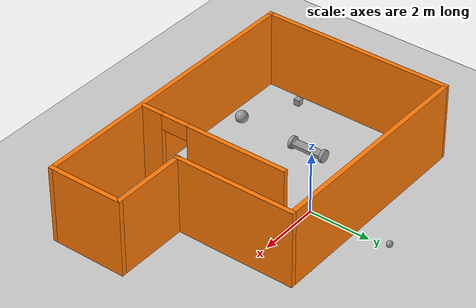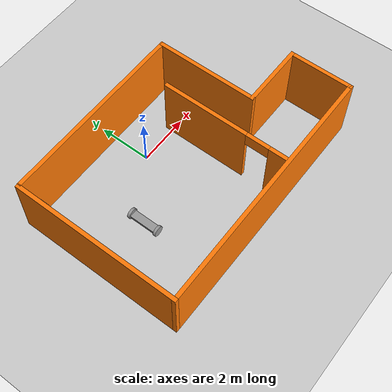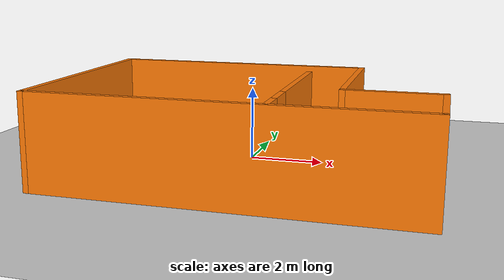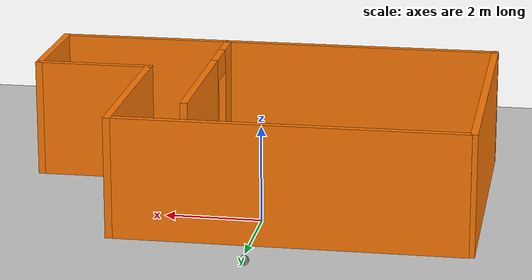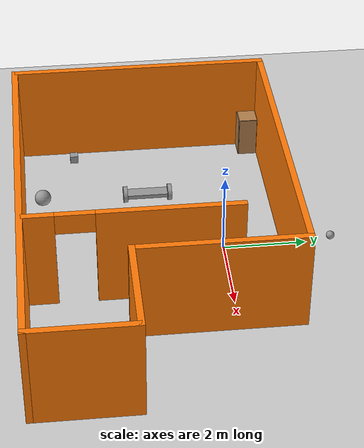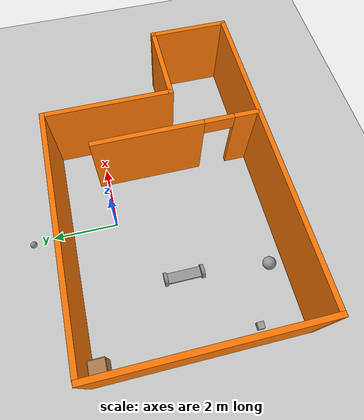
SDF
<sdf version="1.6">
 <world name="default">
  <plugin name="hello" filename="libhello.so"/>
  <light name="sun" type="directional">
   <pose>0 0 10 0 -0 0</pose>
   <diffuse>0.8 0.8 0.8 1</diffuse>
   <specular>0.2 0.2 0.2 1</specular>
   <attenuation>
    <range>1000</range>
    <constant>0.9</constant>
    <linear>0.01</linear>
    <quadratic>0.001</quadratic>
   </attenuation>
   <direction>-0.5 0.1 -0.9</direction>
  </light>
  <model name="ground_plane">
   <static>1</static>
   <link name="link">
    <collision name="collision">
     <geometry><plane><normal>0 0 1</normal><size>100 100</size></plane></geometry>
     <surface>
      <contact><collide_bitmask>65535</collide_bitmask></contact>
      <friction><ode><mu>100</mu><mu2>50</mu2></ode></friction>
     </surface>
    </collision>
    <visual name="visual">
     <cast_shadows>0</cast_shadows>
     <geometry><plane><normal>0 0 1</normal><size>100 100</size></plane></geometry>
     <material>
      <script><uri>file://media/materials/scripts/gazebo.material</uri><name>Gazebo/Grey</name></script>
     </material>
    </visual>
   </link>
  </model>
  <gravity>0 0 -9.8</gravity>
  <magnetic_field>6e-06 2.3e-05 -4.2e-05</magnetic_field>
  <atmosphere type="adiabatic"/>
  <physics name="default_physics" default="0" type="ode">
   <max_step_size>0.001</max_step_size>
   <real_time_factor>1</real_time_factor>
   <real_time_update_rate>1000</real_time_update_rate>
  </physics>
  <scene><ambient>0.4 0.4 0.4 1</ambient><background>0.7 0.7 0.7 1</background><shadows>1</shadows></scene>
  <spherical_coordinates>
   <surface_model>EARTH_WGS84</surface_model>
   <latitude_deg>0</latitude_deg>
   <longitude_deg>0</longitude_deg>
   <elevation>0</elevation>
   <heading_deg>0</heading_deg>
  </spherical_coordinates>
  <model name="P_World">
   <pose>0.43148 -1.64418 0 0 -0 0</pose>
   <link name="Wall_0">
    <collision name="Wall_0_Collision">
     <geometry><box><size>7.25 0.15 2.5</size></box></geometry>
     <pose>0 0 1.25 0 -0 0</pose>
    </collision>
    <visual name="Wall_0_Visual">
     <pose>0 0 1.25 0 -0 0</pose>
     <geometry><box><size>7.25 0.15 2.5</size></box></geometry>
     <material>
      <script><uri>file://media/materials/scripts/gazebo.material</uri><name>Gazebo/Grey</name></script>
      <ambient>0.996078 0.47451 0.0196078 1</ambient>
     </material>
     <meta><layer>0</layer></meta>
    </visual>
    <pose>-1.141 3.10045 0 0 -0 0</pose>
   </link>
   <link name="Wall_12">
    <pose>1.11372 -0.584713 0 0 0 -1.5708</pose>
    <visual name="Wall_12_Visual_0">
     <pose>-0.823007 0 1.25 0 -0 0</pose>
     <geometry><box><size>3.35399 0.15 2.5</size></box></geometry>
     <material>
      <script><uri>file://media/materials/scripts/gazebo.material</uri><name>Gazebo/Grey</name></script>
      <ambient>0.996078 0.47451 0.0196078 1</ambient>
     </material>
     <meta><layer>0</layer></meta>
    </visual>
    <collision name="Wall_12_Collision_0">
     <geometry><box><size>3.35399 0.15 2.5</size></box></geometry>
     <pose>-0.823007 0 1.25 0 -0 0</pose>
    </collision>
    <visual name="Wall_12_Visual_1">
     <pose>2.12699 0 1.25 0 -0 0</pose>
     <geometry><box><size>0.746013 0.15 2.5</size></box></geometry>
     <material>
      <script><uri>file://media/materials/scripts/gazebo.material</uri><name>Gazebo/Grey</name></script>
      <ambient>0.996078 0.47451 0.0196078 1</ambient>
     </material>
     <meta><layer>0</layer></meta>
    </visual>
    <collision name="Wall_12_Collision_1">
     <geometry><box><size>0.746013 0.15 2.5</size></box></geometry>
     <pose>2.12699 0 1.25 0 -0 0</pose>
    </collision>
    <visual name="Wall_12_Visual_2">
     <pose>1.30399 0 2.25 0 -0 0</pose>
     <geometry><box><size>0.9 0.15 0.5</size></box></geometry>
     <material>
      <script><uri>file://media/materials/scripts/gazebo.material</uri><name>Gazebo/Grey</name></script>
      <ambient>0.996078 0.47451 0.0196078 1</ambient>
     </material>
     <meta><layer>0</layer></meta>
    </visual>
    <collision name="Wall_12_Collision_2">
     <geometry><box><size>0.9 0.15 0.5</size></box></geometry>
     <pose>1.30399 0 2.25 0 -0 0</pose>
    </collision>
   </link>
   <link name="Wall_14">
    <collision name="Wall_14_Collision">
     <geometry><box><size>6.34 0.15 2.5</size></box></geometry>
     <pose>0 0 1.25 0 -0 0</pose>
    </collision>
    <visual name="Wall_14_Visual">
     <pose>0 0 1.25 0 -0 0</pose>
     <geometry><box><size>6.34 0.15 2.5</size></box></geometry>
     <material>
      <script><uri>file://media/materials/scripts/gazebo.material</uri><name>Gazebo/Grey</name></script>
      <ambient>0.996078 0.47451 0.0196078 1</ambient>
     </material>
     <meta><layer>0</layer></meta>
    </visual>
    <pose>-4.8 -0.005555 0 0 -0 1.5708</pose>
   </link>
   <link name="Wall_4">
    <collision name="Wall_4_Collision">
     <geometry><box><size>4.00122 0.15 2.5</size></box></geometry>
     <pose>0 0 1.25 0 -0 0</pose>
    </collision>
    <visual name="Wall_4_Visual">
     <pose>0 0 1.25 0 -0 0</pose>
     <geometry><box><size>4.00122 0.15 2.5</size></box></geometry>
     <material>
      <script><uri>file://media/materials/scripts/gazebo.material</uri><name>Gazebo/Grey</name></script>
      <ambient>0.996078 0.47451 0.0196078 1</ambient>
     </material>
     <meta><layer>0</layer></meta>
    </visual>
    <pose>2.409 1.17494 0 0 0 -1.5708</pose>
   </link>
   <link name="Wall_6">
    <collision name="Wall_6_Collision">
     <geometry><box><size>2.541 0.15 2.5</size></box></geometry>
     <pose>0 0 1.25 0 -0 0</pose>
    </collision>
    <visual name="Wall_6_Visual">
     <pose>0 0 1.25 0 -0 0</pose>
     <geometry><box><size>2.541 0.15 2.5</size></box></geometry>
     <material>
      <script><uri>file://media/materials/scripts/gazebo.material</uri><name>Gazebo/Grey</name></script>
      <ambient>0.996078 0.47451 0.0196078 1</ambient>
     </material>
     <meta><layer>0</layer></meta>
    </visual>
    <pose>3.6045 -0.750555 0 0 -0 0</pose>
   </link>
   <link name="Wall_7">
    <collision name="Wall_7_Collision">
     <geometry><box><size>2.5 0.15 2.5</size></box></geometry>
     <pose>0 0 1.25 0 -0 0</pose>
    </collision>
    <visual name="Wall_7_Visual">
     <pose>0 0 1.25 0 -0 0</pose>
     <geometry><box><size>2.5 0.15 2.5</size></box></geometry>
     <material>
      <script><uri>file://media/materials/scripts/gazebo.material</uri><name>Gazebo/Grey</name></script>
      <ambient>0.996078 0.47451 0.0196078 1</ambient>
     </material>
     <meta><layer>0</layer></meta>
    </visual>
    <pose>4.8 -1.92555 0 0 0 -1.5708</pose>
   </link>
   <link name="Wall_8">
    <collision name="Wall_8_Collision">
     <geometry><box><size>9.75 0.15 2.5</size></box></geometry>
     <pose>0 0 1.25 0 -0 0</pose>
    </collision>
    <visual name="Wall_8_Visual">
     <pose>0 0 1.25 0 -0 0</pose>
     <geometry><box><size>9.75 0.15 2.5</size></box></geometry>
     <material>
      <script><uri>file://media/materials/scripts/gazebo.material</uri><name>Gazebo/Grey</name></script>
      <ambient>0.996078 0.47451 0.0196078 1</ambient>
     </material>
     <meta><layer>0</layer></meta>
    </visual>
    <pose>0 -3.10055 0 0 -0 3.14159</pose>
   </link>
   <static>1</static>
  </model>
  <model name="robot_2">
   <link name="link_0">
    <inertial>
     <mass>1</mass>
     <inertia>
      <ixx>0.166667</ixx>
      <ixy>0</ixy>
      <ixz>0</ixz>
      <iyy>0.166667</iyy>
      <iyz>0</iyz>
      <izz>0.166667</izz>
     </inertia>
    </inertial>
    <visual name="visual">
     <geometry><box><size>0.3 1 0.1</size></box></geometry>
     <material>
      <lighting>1</lighting>
      <script><uri>file://media/materials/scripts/gazebo.material</uri><name>Gazebo/Grey</name></script>
      <shader type="pixel"><normal_map>__default__</normal_map></shader>
      <ambient>0.3 0.3 0.3 1</ambient>
      <diffuse>0.7 0.7 0.7 1</diffuse>
      <specular>0.01 0.01 0.01 1</specular>
      <emissive>0 0 0 1</emissive>
     </material>
    </visual>
    <collision name="collision">
     <geometry><box><size>0.3 1 0.1</size></box></geometry>
     <surface>
      <friction>
       <ode><mu>1</mu><mu2>1</mu2><fdir1>0 0 0</fdir1><slip1>0</slip1><slip2>0</slip2></ode>
       <torsional>
        <coefficient>1</coefficient>
        <patch_radius>0</patch_radius>
        <surface_radius>0</surface_radius>
        <use_patch_radius>1</use_patch_radius>
        <ode><slip>0</slip></ode>
       </torsional>
      </friction>
      <bounce><restitution_coefficient>0</restitution_coefficient><threshold>1e+06</threshold></bounce>
      <contact>
       <collide_without_contact>0</collide_without_contact>
       <collide_without_contact_bitmask>1</collide_without_contact_bitmask>
       <collide_bitmask>1</collide_bitmask>
       <ode>
        <soft_cfm>0</soft_cfm>
        <soft_erp>0.2</soft_erp>
        <kp>1e+13</kp>
        <kd>1</kd>
        <max_vel>0.01</max_vel>
        <min_depth>0</min_depth>
       </ode>
       <bullet>
        <split_impulse>1</split_impulse>
        <split_impulse_penetration_threshold>-0.01</split_impulse_penetration_threshold>
        <soft_cfm>0</soft_cfm>
        <soft_erp>0.2</soft_erp>
        <kp>1e+13</kp>
        <kd>1</kd>
       </bullet>
      </contact>
     </surface>
    </collision>
   </link>
   <link name="link_1_clone">
    <pose>0 0.550159 0 1.57 -0 0</pose>
    <inertial>
     <mass>1</mass>
     <inertia><ixx>0.145833</ixx><ixy>0</ixy><ixz>0</ixz><iyy>0.145833</iyy><iyz>0</iyz><izz>0.125</izz></inertia>
    </inertial>
    <visual name="visual">
     <geometry><cylinder><radius>0.2</radius><length>0.1</length></cylinder></geometry>
     <material>
      <lighting>1</lighting>
      <script><uri>file://media/materials/scripts/gazebo.material</uri><name>Gazebo/Grey</name></script>
      <shader type="pixel"><normal_map>__default__</normal_map></shader>
      <ambient>0.3 0.3 0.3 1</ambient>
      <diffuse>0.7 0.7 0.7 1</diffuse>
      <specular>0.01 0.01 0.01 1</specular>
      <emissive>0 0 0 1</emissive>
     </material>
    </visual>
    <collision name="collision">
     <geometry><cylinder><radius>0.2</radius><length>0.1</length></cylinder></geometry>
     <surface>
      <friction>
       <ode><mu>1</mu><mu2>1</mu2><fdir1>0 0 0</fdir1><slip1>0</slip1><slip2>0</slip2></ode>
       <torsional>
        <coefficient>1</coefficient>
        <patch_radius>0</patch_radius>
        <surface_radius>0</surface_radius>
        <use_patch_radius>1</use_patch_radius>
        <ode><slip>0</slip></ode>
       </torsional>
      </friction>
      <bounce><restitution_coefficient>0</restitution_coefficient><threshold>1e+06</threshold></bounce>
      <contact>
       <collide_without_contact>0</collide_without_contact>
       <collide_without_contact_bitmask>1</collide_without_contact_bitmask>
       <collide_bitmask>1</collide_bitmask>
       <ode>
        <soft_cfm>0</soft_cfm>
        <soft_erp>0.2</soft_erp>
        <kp>1e+13</kp>
        <kd>1</kd>
        <max_vel>0.01</max_vel>
        <min_depth>0</min_depth>
       </ode>
       <bullet>
        <split_impulse>1</split_impulse>
        <split_impulse_penetration_threshold>-0.01</split_impulse_penetration_threshold>
        <soft_cfm>0</soft_cfm>
        <soft_erp>0.2</soft_erp>
        <kp>1e+13</kp>
        <kd>1</kd>
       </bullet>
      </contact>
     </surface>
    </collision>
   </link>
   <link name="link_1_clone_clone">
    <pose>0 -0.550159 0 1.57 -0 0</pose>
    <inertial>
     <mass>1</mass>
     <inertia><ixx>0.145833</ixx><ixy>0</ixy><ixz>0</ixz><iyy>0.145833</iyy><iyz>0</iyz><izz>0.125</izz></inertia>
    </inertial>
    <visual name="visual">
     <geometry><cylinder><radius>0.2</radius><length>0.1</length></cylinder></geometry>
     <material>
      <lighting>1</lighting>
      <script><uri>file://media/materials/scripts/gazebo.material</uri><name>Gazebo/Grey</name></script>
      <shader type="pixel"><normal_map>__default__</normal_map></shader>
      <ambient>0.3 0.3 0.3 1</ambient>
      <diffuse>0.7 0.7 0.7 1</diffuse>
      <specular>0.01 0.01 0.01 1</specular>
      <emissive>0 0 0 1</emissive>
     </material>
    </visual>
    <collision name="collision">
     <geometry><cylinder><radius>0.2</radius><length>0.1</length></cylinder></geometry>
     <surface>
      <friction>
       <ode><mu>1</mu><mu2>1</mu2><fdir1>0 0 0</fdir1><slip1>0</slip1><slip2>0</slip2></ode>
       <torsional>
        <coefficient>1</coefficient>
        <patch_radius>0</patch_radius>
        <surface_radius>0</surface_radius>
        <use_patch_radius>1</use_patch_radius>
        <ode><slip>0</slip></ode>
       </torsional>
      </friction>
      <bounce><restitution_coefficient>0</restitution_coefficient><threshold>1e+06</threshold></bounce>
      <contact>
       <collide_without_contact>0</collide_without_contact>
       <collide_without_contact_bitmask>1</collide_without_contact_bitmask>
       <collide_bitmask>1</collide_bitmask>
       <ode>
        <soft_cfm>0</soft_cfm>
        <soft_erp>0.2</soft_erp>
        <kp>1e+13</kp>
        <kd>1</kd>
        <max_vel>0.01</max_vel>
        <min_depth>0</min_depth>
       </ode>
       <bullet>
        <split_impulse>1</split_impulse>
        <split_impulse_penetration_threshold>-0.01</split_impulse_penetration_threshold>
        <soft_cfm>0</soft_cfm>
        <soft_erp>0.2</soft_erp>
        <kp>1e+13</kp>
        <kd>1</kd>
       </bullet>
      </contact>
     </surface>
    </collision>
   </link>
   <joint name="link_0_JOINT_2" type="revolute">
    <parent>link_0</parent>
    <child>link_1_clone</child>
    <axis>
     <xyz>1 0 0</xyz>
     <use_parent_model_frame>0</use_parent_model_frame>
     <limit>
      <lower>-1.79769e+308</lower>
      <upper>1.79769e+308</upper>
      <effort>-1</effort>
      <velocity>-1</velocity>
     </limit>
     <dynamics>
      <spring_reference>0</spring_reference>
      <spring_stiffness>0</spring_stiffness>
      <damping>0</damping>
     </dynamics>
    </axis>
    <physics>
     <ode><limit><cfm>0</cfm><erp>0.2</erp></limit><suspension><cfm>0</cfm><erp>0.2</erp></suspension></ode>
    </physics>
   </joint>
   <joint name="link_0_JOINT_3" type="revolute">
    <parent>link_0</parent>
    <child>link_1_clone_clone</child>
    <axis>
     <xyz>1 0 0</xyz>
     <use_parent_model_frame>0</use_parent_model_frame>
     <limit>
      <lower>-1.79769e+308</lower>
      <upper>1.79769e+308</upper>
      <effort>-1</effort>
      <velocity>-1</velocity>
     </limit>
     <dynamics>
      <spring_reference>0</spring_reference>
      <spring_stiffness>0</spring_stiffness>
      <damping>0</damping>
     </dynamics>
    </axis>
    <physics>
     <ode><limit><cfm>0</cfm><erp>0.2</erp></limit><suspension><cfm>0</cfm><erp>0.2</erp></suspension></ode>
    </physics>
   </joint>
   <static>0</static>
   <pose>-2.09246 -1.63443 0.199996 8e-06 0.000721 -1.3e-05</pose>
  </model>
  <model name="a">
   <link name="link_0">
    <pose>-0.51151 -1.22262 0.033333 0 -0 0</pose>
    <inertial>
     <mass>1</mass>
     <inertia>
      <ixx>0.166667</ixx>
      <ixy>0</ixy>
      <ixz>0</ixz>
      <iyy>0.166667</iyy>
      <iyz>0</iyz>
      <izz>0.166667</izz>
     </inertia>
    </inertial>
    <visual name="visual">
     <geometry><box><size>0.2 0.2 0.2</size></box></geometry>
     <material>
      <lighting>1</lighting>
      <script><uri>file://media/materials/scripts/gazebo.material</uri><name>Gazebo/Grey</name></script>
      <shader type="pixel"><normal_map>__default__</normal_map></shader>
      <ambient>0.3 0.3 0.3 1</ambient>
      <diffuse>0.7 0.7 0.7 1</diffuse>
      <specular>0.01 0.01 0.01 1</specular>
      <emissive>0 0 0 1</emissive>
     </material>
    </visual>
    <collision name="collision">
     <geometry><box><size>0.2 0.2 0.2</size></box></geometry>
     <surface>
      <friction>
       <ode><mu>1</mu><mu2>1</mu2><fdir1>0 0 0</fdir1><slip1>0</slip1><slip2>0</slip2></ode>
       <torsional>
        <coefficient>1</coefficient>
        <patch_radius>0</patch_radius>
        <surface_radius>0</surface_radius>
        <use_patch_radius>1</use_patch_radius>
        <ode><slip>0</slip></ode>
       </torsional>
      </friction>
      <bounce><restitution_coefficient>0</restitution_coefficient><threshold>1e+06</threshold></bounce>
      <contact>
       <collide_without_contact>0</collide_without_contact>
       <collide_without_contact_bitmask>1</collide_without_contact_bitmask>
       <collide_bitmask>1</collide_bitmask>
       <ode>
        <soft_cfm>0</soft_cfm>
        <soft_erp>0.2</soft_erp>
        <kp>1e+13</kp>
        <kd>1</kd>
        <max_vel>0.01</max_vel>
        <min_depth>0</min_depth>
       </ode>
       <bullet>
        <split_impulse>1</split_impulse>
        <split_impulse_penetration_threshold>-0.01</split_impulse_penetration_threshold>
        <soft_cfm>0</soft_cfm>
        <soft_erp>0.2</soft_erp>
        <kp>1e+13</kp>
        <kd>1</kd>
       </bullet>
      </contact>
     </surface>
    </collision>
   </link>
   <link name="link_1">
    <pose>1.14511 -2.08059 0.033333 0 -0 0</pose>
    <inertial>
     <mass>1</mass>
     <inertia><ixx>0.1</ixx><ixy>0</ixy><ixz>0</ixz><iyy>0.1</iyy><iyz>0</iyz><izz>0.1</izz></inertia>
    </inertial>
    <visual name="visual">
     <geometry><sphere><radius>0.2</radius></sphere></geometry>
     <material>
      <lighting>1</lighting>
      <script><uri>file://media/materials/scripts/gazebo.material</uri><name>Gazebo/Grey</name></script>
      <shader type="pixel"><normal_map>__default__</normal_map></shader>
      <ambient>0.3 0.3 0.3 1</ambient>
      <diffuse>0.7 0.7 0.7 1</diffuse>
      <specular>0.01 0.01 0.01 1</specular>
      <emissive>0 0 0 1</emissive>
     </material>
    </visual>
    <collision name="collision">
     <geometry><sphere><radius>0.2</radius></sphere></geometry>
     <surface>
      <friction>
       <ode><mu>1</mu><mu2>1</mu2><fdir1>0 0 0</fdir1><slip1>0</slip1><slip2>0</slip2></ode>
       <torsional>
        <coefficient>1</coefficient>
        <patch_radius>0</patch_radius>
        <surface_radius>0</surface_radius>
        <use_patch_radius>1</use_patch_radius>
        <ode><slip>0</slip></ode>
       </torsional>
      </friction>
      <bounce><restitution_coefficient>0</restitution_coefficient><threshold>1e+06</threshold></bounce>
      <contact>
       <collide_without_contact>0</collide_without_contact>
       <collide_without_contact_bitmask>1</collide_without_contact_bitmask>
       <collide_bitmask>1</collide_bitmask>
       <ode>
        <soft_cfm>0</soft_cfm>
        <soft_erp>0.2</soft_erp>
        <kp>1e+13</kp>
        <kd>1</kd>
        <max_vel>0.01</max_vel>
        <min_depth>0</min_depth>
       </ode>
       <bullet>
        <split_impulse>1</split_impulse>
        <split_impulse_penetration_threshold>-0.01</split_impulse_penetration_threshold>
        <soft_cfm>0</soft_cfm>
        <soft_erp>0.2</soft_erp>
        <kp>1e+13</kp>
        <kd>1</kd>
       </bullet>
      </contact>
     </surface>
    </collision>
   </link>
   <model name="cabinet">
    <static>1</static>
    <link name="cabinet_bottom_plate">
     <inertial>
      <pose>0 0 -1 0 -0 0</pose>
      <inertia><ixx>2.05</ixx><ixy>0</ixy><ixz>0</ixz><iyy>2.05</iyy><iyz>0</iyz><izz>2.05</izz></inertia>
      <mass>25</mass>
     </inertial>
     <collision name="cabinet_bottom_plate_geom">
      <pose>0 0 0.01 0 -0 0</pose>
      <geometry><box><size>0.45 0.45 0.02</size></box></geometry>
     </collision>
     <visual name="cabinet_bottom_plate_geom_visual">
      <pose>0 0 0.01 0 -0 0</pose>
      <geometry><box><size>0.45 0.45 0.02</size></box></geometry>
      <material>
       <script><uri>file://media/materials/scripts/gazebo.material</uri><name>Gazebo/Wood</name></script>
      </material>
     </visual>
     <collision name="cabinet_bottom_plate_geom_cabinet_back_plate">
      <pose>0.235 0 0.51 0 -0 0</pose>
      <geometry><box><size>0.02 0.45 1.02</size></box></geometry>
     </collision>
     <visual name="cabinet_bottom_plate_geom_cabinet_back_plate_visual">
      <pose>0.235 0 0.51 0 -0 0</pose>
      <geometry><box><size>0.02 0.45 1.02</size></box></geometry>
      <material>
       <script><uri>file://media/materials/scripts/gazebo.material</uri><name>Gazebo/Wood</name></script>
      </material>
     </visual>
     <collision name="cabinet_bottom_plate_geom_cabinet_left_plate">
      <pose>0 0.235 0.51 0 -0 0</pose>
      <geometry><box><size>0.45 0.02 1.02</size></box></geometry>
     </collision>
     <visual name="cabinet_bottom_plate_geom_cabinet_left_plate_visual">
      <pose>0 0.235 0.51 0 -0 0</pose>
      <geometry><box><size>0.45 0.02 1.02</size></box></geometry>
      <material>
       <script><uri>file://media/materials/scripts/gazebo.material</uri><name>Gazebo/Wood</name></script>
      </material>
     </visual>
     <collision name="cabinet_bottom_plate_geom_cabinet_middle_plate">
      <pose>0 0 0.51 0 -0 0</pose>
      <geometry><box><size>0.45 0.45 0.02</size></box></geometry>
     </collision>
     <visual name="cabinet_bottom_plate_geom_cabinet_middle_plate_visual">
      <pose>0 0 0.51 0 -0 0</pose>
      <geometry><box><size>0.45 0.45 0.02</size></box></geometry>
      <material>
       <script><uri>file://media/materials/scripts/gazebo.material</uri><name>Gazebo/Wood</name></script>
      </material>
     </visual>
     <collision name="cabinet_bottom_plate_geom_cabinet_right_plate">
      <pose>0 -0.235 0.51 0 -0 0</pose>
      <geometry><box><size>0.45 0.02 1.02</size></box></geometry>
     </collision>
     <visual name="cabinet_bottom_plate_geom_cabinet_right_plate_visual">
      <pose>0 -0.235 0.51 0 -0 0</pose>
      <geometry><box><size>0.45 0.02 1.02</size></box></geometry>
      <material>
       <script><uri>file://media/materials/scripts/gazebo.material</uri><name>Gazebo/Wood</name></script>
      </material>
     </visual>
     <collision name="cabinet_bottom_plate_geom_cabinet_top_plate">
      <pose>0 0 1.01 0 -0 0</pose>
      <geometry><box><size>0.45 0.45 0.02</size></box></geometry>
     </collision>
     <visual name="cabinet_bottom_plate_geom_cabinet_top_plate_visual">
      <pose>0 0 1.01 0 -0 0</pose>
      <geometry><box><size>0.45 0.45 0.02</size></box></geometry>
      <material>
       <script><uri>file://media/materials/scripts/gazebo.material</uri><name>Gazebo/Wood</name></script>
      </material>
     </visual>
    </link>
    <pose>-0.633597 3.30321 -0.066667 0 -0 0</pose>
   </model>
   <static>0</static>
   <pose>-3.43874 -2.15562 0.066671 2e-06 -4e-06 0</pose>
  </model>
  <model name="my_rrobot">
   <link name="robot_footprint">
    <inertial>
     <pose>0.001325 0 1e-06 0 -0 0</pose>
     <mass>15.1001</mass>
     <inertia>
      <ixx>0.100003</ixx>
      <ixy>0</ixy>
      <ixz>-1.1894e-06</ixz>
      <iyy>0.103978</iyy>
      <iyz>0</iyz>
      <izz>0.103978</izz>
     </inertia>
    </inertial>
    <collision name="robot_footprint_fixed_joint_lump__collision_collision">
     <geometry><box><size>0.4 0.2 0.1</size></box></geometry>
    </collision>
    <collision name="robot_footprint_fixed_joint_lump__back_caster_collision_collision_1">
     <pose>-0.15 0 -0.05 0 -0 0</pose>
     <geometry><sphere><radius>0.0499</radius></sphere></geometry>
    </collision>
    <collision name="robot_footprint_fixed_joint_lump__front_caster_collision_collision_2">
     <pose>0.15 0 -0.05 0 -0 0</pose>
     <geometry><sphere><radius>0.0499</radius></sphere></geometry>
    </collision>
    <collision name="robot_footprint_fixed_joint_lump__camera_collision_3">
     <pose>0.2 0 0 0 -0 0</pose>
     <geometry><box><size>0.05 0.05 0.05</size></box></geometry>
    </collision>
    <collision name="robot_footprint_fixed_joint_lump__hokuyo_collision_4">
     <pose>0.15 0 0.08 0 -0 0</pose>
     <geometry><box><size>0.1 0.1 0.1</size></box></geometry>
    </collision>
   </link>
   <static>0</static>
  </model>
  <model name="my_ball">
   <link name="link_0">
    <inertial>
     <mass>1</mass>
     <inertia><ixx>0.1</ixx><ixy>0</ixy><ixz>0</ixz><iyy>0.1</iyy><iyz>0</iyz><izz>0.1</izz></inertia>
    </inertial>
    <visual name="visual">
     <pose>0 0 0.1 0 -0 0</pose>
     <geometry><sphere><radius>0.1</radius></sphere></geometry>
     <material>
      <lighting>1</lighting>
      <script><uri>file://media/materials/scripts/gazebo.material</uri><name>Gazebo/Grey</name></script>
      <shader type="pixel"><normal_map>__default__</normal_map></shader>
      <ambient>1 1 1 1</ambient>
      <diffuse>1 1 1 1</diffuse>
      <specular>1 1 0.3 1</specular>
      <emissive>1 1 1 1</emissive>
     </material>
    </visual>
    <collision name="collision">
     <pose>0 0 0.1 0 -0 0</pose>
     <geometry><sphere><radius>0.1</radius></sphere></geometry>
     <surface>
      <friction>
       <ode><mu>1</mu><mu2>1</mu2><fdir1>0 0 0</fdir1><slip1>0</slip1><slip2>0</slip2></ode>
       <torsional>
        <coefficient>1</coefficient>
        <patch_radius>0</patch_radius>
        <surface_radius>0</surface_radius>
        <use_patch_radius>1</use_patch_radius>
        <ode><slip>0</slip></ode>
       </torsional>
      </friction>
      <bounce><restitution_coefficient>0</restitution_coefficient><threshold>1e+06</threshold></bounce>
      <contact>
       <collide_without_contact>0</collide_without_contact>
       <collide_without_contact_bitmask>1</collide_without_contact_bitmask>
       <collide_bitmask>1</collide_bitmask>
       <ode>
        <soft_cfm>0</soft_cfm>
        <soft_erp>0.2</soft_erp>
        <kp>1e+13</kp>
        <kd>1</kd>
        <max_vel>0.01</max_vel>
        <min_depth>0</min_depth>
       </ode>
       <bullet>
        <split_impulse>1</split_impulse>
        <split_impulse_penetration_threshold>-0.01</split_impulse_penetration_threshold>
        <soft_cfm>0</soft_cfm>
        <soft_erp>0.2</soft_erp>
        <kp>1e+13</kp>
        <kd>1</kd>
       </bullet>
      </contact>
     </surface>
    </collision>
   </link>
   <static>0</static>
   <pose>-0.086794 2.61203 0 0 -0 0</pose>
  </model>
 </world>
</sdf>
